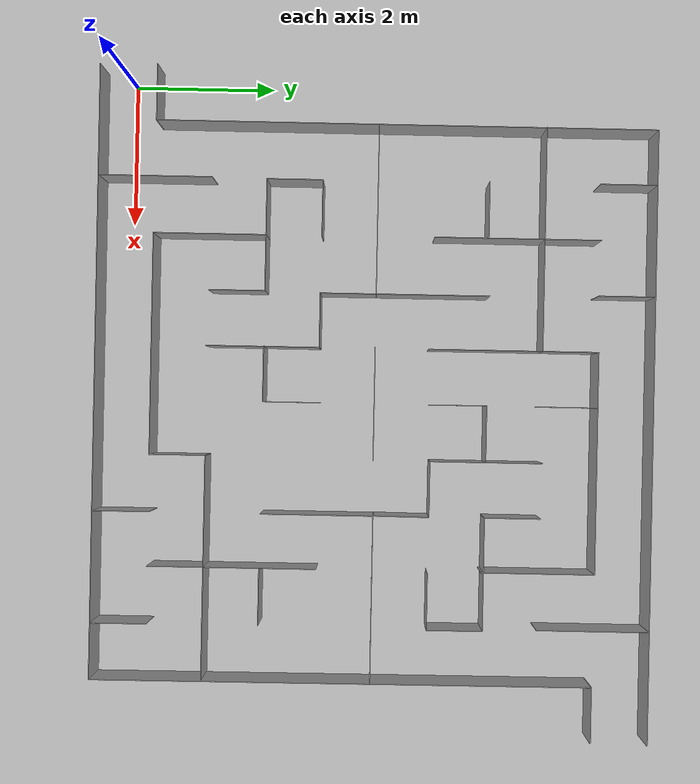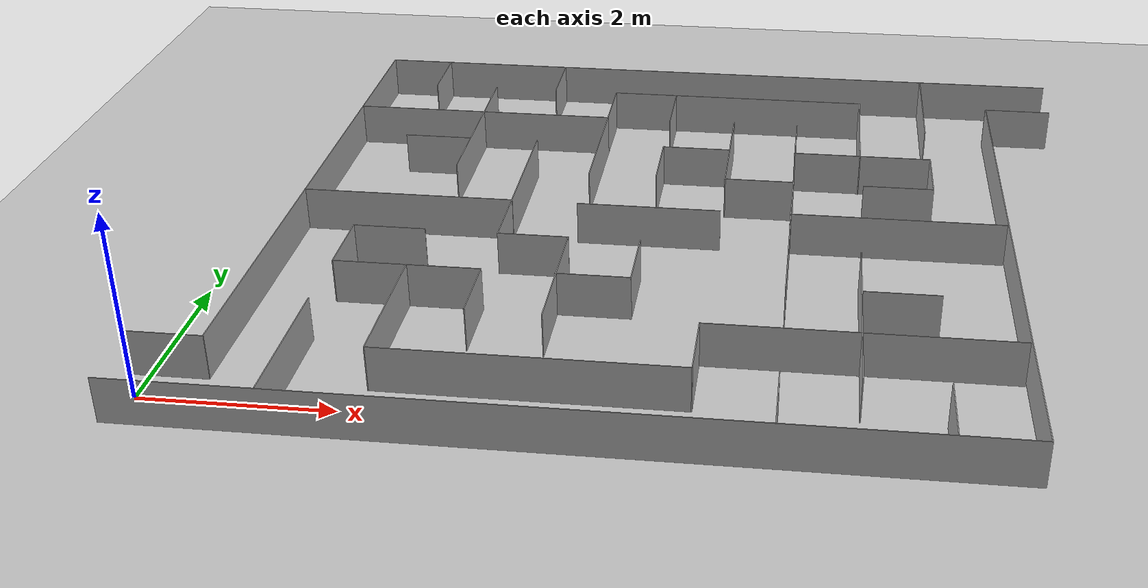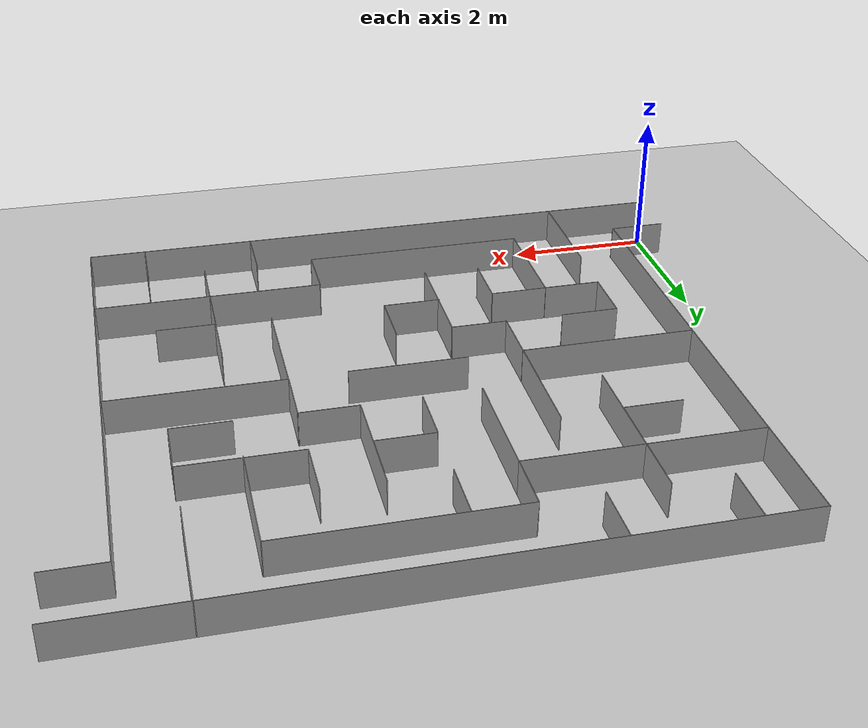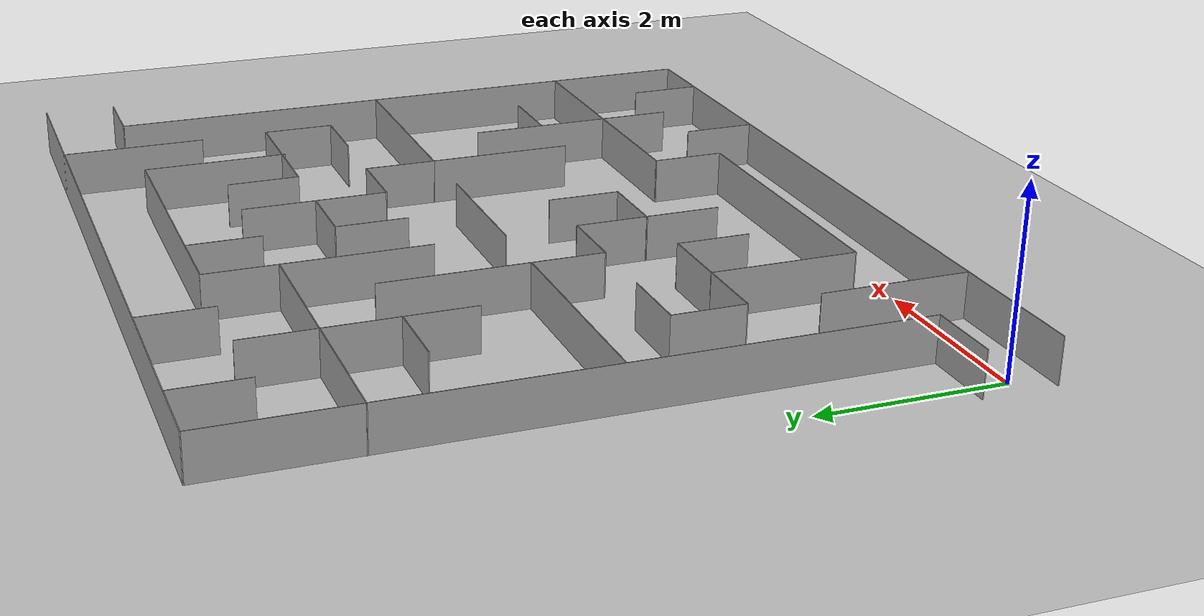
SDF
<sdf version="1.7">
 <world name="default">
  <light name="sun" type="directional">
   <pose>0 0 10 0 -0 0</pose>
   <diffuse>0.8 0.8 0.8 1</diffuse>
   <specular>0.2 0.2 0.2 1</specular>
   <attenuation>
    <range>1000</range>
    <constant>0.9</constant>
    <linear>0.01</linear>
    <quadratic>0.001</quadratic>
   </attenuation>
   <direction>-0.5 0.1 -0.9</direction>
   <spot><inner_angle>0</inner_angle><outer_angle>0</outer_angle><falloff>0</falloff></spot>
  </light>
  <model name="ground_plane">
   <static>1</static>
   <link name="link">
    <collision name="collision">
     <geometry><plane><normal>0 0 1</normal><size>100 100</size></plane></geometry>
     <surface>
      <contact><collide_bitmask>65535</collide_bitmask></contact>
      <friction><ode><mu>100</mu><mu2>50</mu2></ode></friction>
     </surface>
    </collision>
    <visual name="visual">
     <cast_shadows>0</cast_shadows>
     <geometry><plane><normal>0 0 1</normal><size>100 100</size></plane></geometry>
     <material>
      <script><uri>file://media/materials/scripts/gazebo.material</uri><name>Gazebo/Grey</name></script>
     </material>
    </visual>
   </link>
  </model>
  <gravity>0 0 -9.8</gravity>
  <magnetic_field>6e-06 2.3e-05 -4.2e-05</magnetic_field>
  <atmosphere type="adiabatic"/>
  <physics type="ode">
   <max_step_size>0.001</max_step_size>
   <real_time_factor>1</real_time_factor>
   <real_time_update_rate>1000</real_time_update_rate>
  </physics>
  <scene><ambient>0.4 0.4 0.4 1</ambient><background>0.7 0.7 0.7 1</background><shadows>1</shadows></scene>
  <spherical_coordinates>
   <surface_model>EARTH_WGS84</surface_model>
   <latitude_deg>0</latitude_deg>
   <longitude_deg>0</longitude_deg>
   <elevation>0</elevation>
   <heading_deg>0</heading_deg>
  </spherical_coordinates>
  <model name="test_model">
   <pose>4.55115 3.53207 0 0 -0 0</pose>
   <link name="Wall_101">
    <collision name="Wall_101_Collision">
     <geometry><box><size>2.35967 0.01 0.5</size></box></geometry>
     <pose>0 0 0.25 0 -0 0</pose>
    </collision>
    <visual name="Wall_101_Visual">
     <pose>0 0 0.25 0 -0 0</pose>
     <geometry><box><size>2.35967 0.01 0.5</size></box></geometry>
     <material>
      <script><uri>file://media/materials/scripts/gazebo.material</uri><name>Gazebo/Grey</name></script>
      <ambient>1 1 1 1</ambient>
     </material>
     <meta><layer>0</layer></meta>
    </visual>
    <pose>-2.3745 1.99465 0 0 -0 -1.5708</pose>
   </link>
   <link name="Wall_103">
    <collision name="Wall_103_Collision">
     <geometry><box><size>0.8 0.01 0.5</size></box></geometry>
     <pose>0 0 0.25 0 -0 0</pose>
    </collision>
    <visual name="Wall_103_Visual">
     <pose>0 0 0.25 0 -0 0</pose>
     <geometry><box><size>0.8 0.01 0.5</size></box></geometry>
     <material>
      <script><uri>file://media/materials/scripts/gazebo.material</uri><name>Gazebo/Grey</name></script>
      <ambient>1 1 1 1</ambient>
     </material>
     <meta><layer>0</layer></meta>
    </visual>
    <pose>-2.77336 1.57973 0 0 -0 3.14159</pose>
   </link>
   <link name="Wall_105">
    <collision name="Wall_105_Collision">
     <geometry><box><size>0.8 0.01 0.5</size></box></geometry>
     <pose>0 0 0.25 0 -0 0</pose>
    </collision>
    <visual name="Wall_105_Visual">
     <pose>0 0 0.25 0 -0 0</pose>
     <geometry><box><size>0.8 0.01 0.5</size></box></geometry>
     <material>
      <script><uri>file://media/materials/scripts/gazebo.material</uri><name>Gazebo/Grey</name></script>
      <ambient>1 1 1 1</ambient>
     </material>
     <meta><layer>0</layer></meta>
    </visual>
    <pose>-0.7915 2.76665 0 0 -0 1.5708</pose>
   </link>
   <link name="Wall_107">
    <collision name="Wall_107_Collision">
     <geometry><box><size>3.15 0.01 0.5</size></box></geometry>
     <pose>0 0 0.25 0 -0 0</pose>
    </collision>
    <visual name="Wall_107_Visual">
     <pose>0 0 0.25 0 -0 0</pose>
     <geometry><box><size>3.15 0.01 0.5</size></box></geometry>
     <material>
      <script><uri>file://media/materials/scripts/gazebo.material</uri><name>Gazebo/Grey</name></script>
      <ambient>1 1 1 1</ambient>
     </material>
     <meta><layer>0</layer></meta>
    </visual>
    <pose>0.7785 3.16165 0 0 -0 0</pose>
   </link>
   <link name="Wall_109">
    <collision name="Wall_109_Collision">
     <geometry><box><size>1.61 0.01 0.5</size></box></geometry>
     <pose>0 0 0.25 0 -0 0</pose>
    </collision>
    <visual name="Wall_109_Visual">
     <pose>0 0 0.25 0 -0 0</pose>
     <geometry><box><size>1.61 0.01 0.5</size></box></geometry>
     <material>
      <script><uri>file://media/materials/scripts/gazebo.material</uri><name>Gazebo/Grey</name></script>
      <ambient>1 1 1 1</ambient>
     </material>
     <meta><layer>0</layer></meta>
    </visual>
    <pose>2.3485 2.36165 0 0 -0 -1.5708</pose>
   </link>
   <link name="Wall_11">
    <collision name="Wall_11_Collision">
     <geometry><box><size>0.8 0.01 0.5</size></box></geometry>
     <pose>0 0 0.25 0 -0 0</pose>
    </collision>
    <visual name="Wall_11_Visual">
     <pose>0 0 0.25 0 -0 0</pose>
     <geometry><box><size>0.8 0.01 0.5</size></box></geometry>
     <material>
      <script><uri>file://media/materials/scripts/gazebo.material</uri><name>Gazebo/Grey</name></script>
      <ambient>1 1 1 1</ambient>
     </material>
     <meta><layer>0</layer></meta>
    </visual>
    <pose>-4.3495 -3.14135 0 0 -0 3.14159</pose>
   </link>
   <link name="Wall_111">
    <collision name="Wall_111_Collision">
     <geometry><box><size>1.60995 0.01 0.5</size></box></geometry>
     <pose>0 0 0.25 0 -0 0</pose>
    </collision>
    <visual name="Wall_111_Visual">
     <pose>0 0 0.25 0 -0 0</pose>
     <geometry><box><size>1.60995 0.01 0.5</size></box></geometry>
     <material>
      <script><uri>file://media/materials/scripts/gazebo.material</uri><name>Gazebo/Grey</name></script>
      <ambient>1 1 1 1</ambient>
     </material>
     <meta><layer>0</layer></meta>
    </visual>
    <pose>2.3745 1.59265 0 0 -0 0</pose>
   </link>
   <link name="Wall_113">
    <collision name="Wall_113_Collision">
     <geometry><box><size>0.8 0.01 0.5</size></box></geometry>
     <pose>0 0 0.25 0 -0 0</pose>
    </collision>
    <visual name="Wall_113_Visual">
     <pose>0 0 0.25 0 -0 0</pose>
     <geometry><box><size>0.8 0.01 0.5</size></box></geometry>
     <material>
      <script><uri>file://media/materials/scripts/gazebo.material</uri><name>Gazebo/Grey</name></script>
      <ambient>1 1 1 1</ambient>
     </material>
     <meta><layer>0</layer></meta>
    </visual>
    <pose>1.5745 1.98765 0 0 -0 1.5708</pose>
   </link>
   <link name="Wall_115">
    <collision name="Wall_115_Collision">
     <geometry><box><size>0.8 0.01 0.5</size></box></geometry>
     <pose>0 0 0.25 0 -0 0</pose>
    </collision>
    <visual name="Wall_115_Visual">
     <pose>0 0 0.25 0 -0 0</pose>
     <geometry><box><size>0.8 0.01 0.5</size></box></geometry>
     <material>
      <script><uri>file://media/materials/scripts/gazebo.material</uri><name>Gazebo/Grey</name></script>
      <ambient>1 1 1 1</ambient>
     </material>
     <meta><layer>0</layer></meta>
    </visual>
    <pose>3.1745 1.19765 0 0 -0 -1.5708</pose>
   </link>
   <link name="Wall_117">
    <collision name="Wall_117_Collision">
     <geometry><box><size>0.8 0.01 0.5</size></box></geometry>
     <pose>0 0 0.25 0 -0 0</pose>
    </collision>
    <visual name="Wall_117_Visual">
     <pose>0 0 0.25 0 -0 0</pose>
     <geometry><box><size>0.8 0.01 0.5</size></box></geometry>
     <material>
      <script><uri>file://media/materials/scripts/gazebo.material</uri><name>Gazebo/Grey</name></script>
      <ambient>1 1 1 1</ambient>
     </material>
     <meta><layer>0</layer></meta>
    </visual>
    <pose>2.7795 0.80265 0 0 -0 3.14159</pose>
   </link>
   <link name="Wall_119">
    <collision name="Wall_119_Collision">
     <geometry><box><size>0.8 0.01 0.5</size></box></geometry>
     <pose>0 0 0.25 0 -0 0</pose>
    </collision>
    <visual name="Wall_119_Visual">
     <pose>0 0 0.25 0 -0 0</pose>
     <geometry><box><size>0.8 0.01 0.5</size></box></geometry>
     <material>
      <script><uri>file://media/materials/scripts/gazebo.material</uri><name>Gazebo/Grey</name></script>
      <ambient>1 1 1 1</ambient>
     </material>
     <meta><layer>0</layer></meta>
    </visual>
    <pose>-0.006272 2.75727 0 0 -0 -1.5708</pose>
   </link>
   <link name="Wall_121">
    <collision name="Wall_121_Collision">
     <geometry><box><size>0.8 0.01 0.5</size></box></geometry>
     <pose>0 0 0.25 0 -0 0</pose>
    </collision>
    <visual name="Wall_121_Visual">
     <pose>0 0 0.25 0 -0 0</pose>
     <geometry><box><size>0.8 0.01 0.5</size></box></geometry>
     <material>
      <script><uri>file://media/materials/scripts/gazebo.material</uri><name>Gazebo/Grey</name></script>
      <ambient>1 1 1 1</ambient>
     </material>
     <meta><layer>0</layer></meta>
    </visual>
    <pose>-3.16629 3.54766 0 0 -0 -1.5708</pose>
   </link>
   <link name="Wall_123">
    <collision name="Wall_123_Collision">
     <geometry><box><size>0.8 0.01 0.5</size></box></geometry>
     <pose>0 0 0.25 0 -0 0</pose>
    </collision>
    <visual name="Wall_123_Visual">
     <pose>0 0 0.25 0 -0 0</pose>
     <geometry><box><size>0.8 0.01 0.5</size></box></geometry>
     <material>
      <script><uri>file://media/materials/scripts/gazebo.material</uri><name>Gazebo/Grey</name></script>
      <ambient>1 1 1 1</ambient>
     </material>
     <meta><layer>0</layer></meta>
    </visual>
    <pose>-1.58797 3.54766 0 0 -0 -1.5708</pose>
   </link>
   <link name="Wall_125">
    <collision name="Wall_125_Collision">
     <geometry><box><size>1.6 0.01 0.5</size></box></geometry>
     <pose>0 0 0.25 0 -0 0</pose>
    </collision>
    <visual name="Wall_125_Visual">
     <pose>0 0 0.25 0 -0 0</pose>
     <geometry><box><size>1.6 0.01 0.5</size></box></geometry>
     <material>
      <script><uri>file://media/materials/scripts/gazebo.material</uri><name>Gazebo/Grey</name></script>
      <ambient>1 1 1 1</ambient>
     </material>
     <meta><layer>0</layer></meta>
    </visual>
    <pose>3.147 3.15435 0 0 -0 -1.5708</pose>
   </link>
   <link name="Wall_13">
    <collision name="Wall_13_Collision">
     <geometry><box><size>8.7 0.01 0.5</size></box></geometry>
     <pose>0 0 0.25 0 -0 0</pose>
    </collision>
    <visual name="Wall_13_Visual">
     <pose>0 0 0.25 0 -0 0</pose>
     <geometry><box><size>8.7 0.01 0.5</size></box></geometry>
     <material>
      <script><uri>file://media/materials/scripts/gazebo.material</uri><name>Gazebo/Grey</name></script>
      <ambient>1 1 1 1</ambient>
     </material>
     <meta><layer>0</layer></meta>
    </visual>
    <pose>-0.3845 -3.94935 0 0 -0 0</pose>
   </link>
   <link name="Wall_15">
    <collision name="Wall_15_Collision">
     <geometry><box><size>7.10584 0.01 0.5</size></box></geometry>
     <pose>0 0 0.25 0 -0 0</pose>
    </collision>
    <visual name="Wall_15_Visual">
     <pose>0 0 0.25 0 -0 0</pose>
     <geometry><box><size>7.10584 0.01 0.5</size></box></geometry>
     <material>
      <script><uri>file://media/materials/scripts/gazebo.material</uri><name>Gazebo/Grey</name></script>
      <ambient>1 1 1 1</ambient>
     </material>
     <meta><layer>0</layer></meta>
    </visual>
    <pose>3.9505 -0.40135 0 0 -0 -1.56798</pose>
   </link>
   <link name="Wall_17">
    <collision name="Wall_17_Collision">
     <geometry><box><size>0.8 0.01 0.5</size></box></geometry>
     <pose>0 0 0.25 0 -0 0</pose>
    </collision>
    <visual name="Wall_17_Visual">
     <pose>0 0 0.25 0 -0 0</pose>
     <geometry><box><size>0.8 0.01 0.5</size></box></geometry>
     <material>
      <script><uri>file://media/materials/scripts/gazebo.material</uri><name>Gazebo/Grey</name></script>
      <ambient>1 1 1 1</ambient>
     </material>
     <meta><layer>0</layer></meta>
    </visual>
    <pose>4.3355 3.14665 0 0 -0 0</pose>
   </link>
   <link name="Wall_25">
    <collision name="Wall_25_Collision">
     <geometry><box><size>1.6 0.01 0.5</size></box></geometry>
     <pose>0 0 0.25 0 -0 0</pose>
    </collision>
    <visual name="Wall_25_Visual">
     <pose>0 0 0.25 0 -0 0</pose>
     <geometry><box><size>1.6 0.01 0.5</size></box></geometry>
     <material>
      <script><uri>file://media/materials/scripts/gazebo.material</uri><name>Gazebo/Grey</name></script>
      <ambient>1 1 1 1</ambient>
     </material>
     <meta><layer>0</layer></meta>
    </visual>
    <pose>-3.16511 -3.13621 0 0 -0 1.5708</pose>
   </link>
   <link name="Wall_27">
    <collision name="Wall_27_Collision">
     <geometry><box><size>0.8 0.01 0.5</size></box></geometry>
     <pose>0 0 0.25 0 -0 0</pose>
    </collision>
    <visual name="Wall_27_Visual">
     <pose>0 0 0.25 0 -0 0</pose>
     <geometry><box><size>0.8 0.01 0.5</size></box></geometry>
     <material>
      <script><uri>file://media/materials/scripts/gazebo.material</uri><name>Gazebo/Grey</name></script>
      <ambient>1 1 1 1</ambient>
     </material>
     <meta><layer>0</layer></meta>
    </visual>
    <pose>1.57628 -3.53392 0 0 -0 1.5708</pose>
   </link>
   <link name="Wall_29">
    <collision name="Wall_29_Collision">
     <geometry><box><size>0.8 0.01 0.5</size></box></geometry>
     <pose>0 0 0.25 0 -0 0</pose>
    </collision>
    <visual name="Wall_29_Visual">
     <pose>0 0 0.25 0 -0 0</pose>
     <geometry><box><size>0.8 0.01 0.5</size></box></geometry>
     <material>
      <script><uri>file://media/materials/scripts/gazebo.material</uri><name>Gazebo/Grey</name></script>
      <ambient>1 1 1 1</ambient>
     </material>
     <meta><layer>0</layer></meta>
    </visual>
    <pose>3.16073 -3.54549 0 0 -0 1.5708</pose>
   </link>
   <link name="Wall_40">
    <collision name="Wall_40_Collision">
     <geometry><box><size>3.18 0.01 0.5</size></box></geometry>
     <pose>0 0 0.25 0 -0 0</pose>
    </collision>
    <visual name="Wall_40_Visual">
     <pose>0 0 0.25 0 -0 0</pose>
     <geometry><box><size>3.18 0.01 0.5</size></box></geometry>
     <material>
      <script><uri>file://media/materials/scripts/gazebo.material</uri><name>Gazebo/Grey</name></script>
      <ambient>1 1 1 1</ambient>
     </material>
     <meta><layer>0</layer></meta>
    </visual>
    <pose>2.35133 -2.36641 0 0 -0 3.14159</pose>
   </link>
   <link name="Wall_42">
    <collision name="Wall_42_Collision">
     <geometry><box><size>0.8 0.01 0.5</size></box></geometry>
     <pose>0 0 0.25 0 -0 0</pose>
    </collision>
    <visual name="Wall_42_Visual">
     <pose>0 0 0.25 0 -0 0</pose>
     <geometry><box><size>0.8 0.01 0.5</size></box></geometry>
     <material>
      <script><uri>file://media/materials/scripts/gazebo.material</uri><name>Gazebo/Grey</name></script>
      <ambient>1 1 1 1</ambient>
     </material>
     <meta><layer>0</layer></meta>
    </visual>
    <pose>0.766417 -2.76138 0 0 -0 -1.57059</pose>
   </link>
   <link name="Wall_44">
    <collision name="Wall_44_Collision">
     <geometry><box><size>3.14 0.01 0.5</size></box></geometry>
     <pose>0 0 0.25 0 -0 0</pose>
    </collision>
    <visual name="Wall_44_Visual">
     <pose>0 0 0.25 0 -0 0</pose>
     <geometry><box><size>3.14 0.01 0.5</size></box></geometry>
     <material>
      <script><uri>file://media/materials/scripts/gazebo.material</uri><name>Gazebo/Grey</name></script>
      <ambient>1 1 1 1</ambient>
     </material>
     <meta><layer>0</layer></meta>
    </visual>
    <pose>-0.7985 -3.15635 0 0 -0 3.14159</pose>
   </link>
   <link name="Wall_46">
    <collision name="Wall_46_Collision">
     <geometry><box><size>1.6 0.01 0.5</size></box></geometry>
     <pose>0 0 0.25 0 -0 0</pose>
    </collision>
    <visual name="Wall_46_Visual">
     <pose>0 0 0.25 0 -0 0</pose>
     <geometry><box><size>1.6 0.01 0.5</size></box></geometry>
     <material>
      <script><uri>file://media/materials/scripts/gazebo.material</uri><name>Gazebo/Grey</name></script>
      <ambient>1 1 1 1</ambient>
     </material>
     <meta><layer>0</layer></meta>
    </visual>
    <pose>-2.3635 -2.36135 0 0 -0 1.5708</pose>
   </link>
   <link name="Wall_48">
    <collision name="Wall_48_Collision">
     <geometry><box><size>0.8 0.01 0.5</size></box></geometry>
     <pose>0 0 0.25 0 -0 0</pose>
    </collision>
    <visual name="Wall_48_Visual">
     <pose>0 0 0.25 0 -0 0</pose>
     <geometry><box><size>0.8 0.01 0.5</size></box></geometry>
     <material>
      <script><uri>file://media/materials/scripts/gazebo.material</uri><name>Gazebo/Grey</name></script>
      <ambient>1 1 1 1</ambient>
     </material>
     <meta><layer>0</layer></meta>
    </visual>
    <pose>2.34536 -2.76129 0 0 -0 -1.5708</pose>
   </link>
   <link name="Wall_5">
    <collision name="Wall_5_Collision">
     <geometry><box><size>8.7 0.01 0.5</size></box></geometry>
     <pose>0 0 0.25 0 -0 0</pose>
    </collision>
    <visual name="Wall_5_Visual">
     <pose>0 0 0.25 0 -0 0</pose>
     <geometry><box><size>8.7 0.01 0.5</size></box></geometry>
     <material>
      <script><uri>file://media/materials/scripts/gazebo.material</uri><name>Gazebo/Grey</name></script>
      <ambient>1 1 1 1</ambient>
     </material>
     <meta><layer>0</layer></meta>
    </visual>
    <pose>0.3995 3.94865 0 0 -0 0</pose>
   </link>
   <link name="Wall_50">
    <collision name="Wall_50_Collision">
     <geometry><box><size>0.8 0.01 0.5</size></box></geometry>
     <pose>0 0 0.25 0 -0 0</pose>
    </collision>
    <visual name="Wall_50_Visual">
     <pose>0 0 0.25 0 -0 0</pose>
     <geometry><box><size>0.8 0.01 0.5</size></box></geometry>
     <material>
      <script><uri>file://media/materials/scripts/gazebo.material</uri><name>Gazebo/Grey</name></script>
      <ambient>1 1 1 1</ambient>
     </material>
     <meta><layer>0</layer></meta>
    </visual>
    <pose>-1.9685 -1.56635 0 0 -0 0</pose>
   </link>
   <link name="Wall_52">
    <collision name="Wall_52_Collision">
     <geometry><box><size>0.8 0.01 0.5</size></box></geometry>
     <pose>0 0 0.25 0 -0 0</pose>
    </collision>
    <visual name="Wall_52_Visual">
     <pose>0 0 0.25 0 -0 0</pose>
     <geometry><box><size>0.8 0.01 0.5</size></box></geometry>
     <material>
      <script><uri>file://media/materials/scripts/gazebo.material</uri><name>Gazebo/Grey</name></script>
      <ambient>1 1 1 1</ambient>
     </material>
     <meta><layer>0</layer></meta>
    </visual>
    <pose>-1.5735 -1.96135 0 0 -0 -1.5708</pose>
   </link>
   <link name="Wall_54">
    <collision name="Wall_54_Collision">
     <geometry><box><size>0.8 0.01 0.5</size></box></geometry>
     <pose>0 0 0.25 0 -0 0</pose>
    </collision>
    <visual name="Wall_54_Visual">
     <pose>0 0 0.25 0 -0 0</pose>
     <geometry><box><size>0.8 0.01 0.5</size></box></geometry>
     <material>
      <script><uri>file://media/materials/scripts/gazebo.material</uri><name>Gazebo/Grey</name></script>
      <ambient>1 1 1 1</ambient>
     </material>
     <meta><layer>0</layer></meta>
    </visual>
    <pose>-2.7585 -1.56635 0 0 -0 3.14159</pose>
   </link>
   <link name="Wall_56">
    <collision name="Wall_56_Collision">
     <geometry><box><size>0.8 0.01 0.5</size></box></geometry>
     <pose>0 0 0.25 0 -0 0</pose>
    </collision>
    <visual name="Wall_56_Visual">
     <pose>0 0 0.25 0 -0 0</pose>
     <geometry><box><size>0.8 0.01 0.5</size></box></geometry>
     <material>
      <script><uri>file://media/materials/scripts/gazebo.material</uri><name>Gazebo/Grey</name></script>
      <ambient>1 1 1 1</ambient>
     </material>
     <meta><layer>0</layer></meta>
    </visual>
    <pose>-3.1535 -1.17135 0 0 -0 1.5708</pose>
   </link>
   <link name="Wall_58">
    <collision name="Wall_58_Collision">
     <geometry><box><size>0.8 0.01 0.5</size></box></geometry>
     <pose>0 0 0.25 0 -0 0</pose>
    </collision>
    <visual name="Wall_58_Visual">
     <pose>0 0 0.25 0 -0 0</pose>
     <geometry><box><size>0.8 0.01 0.5</size></box></geometry>
     <material>
      <script><uri>file://media/materials/scripts/gazebo.material</uri><name>Gazebo/Grey</name></script>
      <ambient>1 1 1 1</ambient>
     </material>
     <meta><layer>0</layer></meta>
    </visual>
    <pose>-2.7585 -0.77635 0 0 -0 0</pose>
   </link>
   <link name="Wall_60">
    <collision name="Wall_60_Collision">
     <geometry><box><size>1.6 0.01 0.5</size></box></geometry>
     <pose>0 0 0.25 0 -0 0</pose>
    </collision>
    <visual name="Wall_60_Visual">
     <pose>0 0 0.25 0 -0 0</pose>
     <geometry><box><size>1.6 0.01 0.5</size></box></geometry>
     <material>
      <script><uri>file://media/materials/scripts/gazebo.material</uri><name>Gazebo/Grey</name></script>
      <ambient>1 1 1 1</ambient>
     </material>
     <meta><layer>0</layer></meta>
    </visual>
    <pose>2.34536 -1.57129 0 0 -0 1.5708</pose>
   </link>
   <link name="Wall_62">
    <collision name="Wall_62_Collision">
     <geometry><box><size>0.8 0.01 0.5</size></box></geometry>
     <pose>0 0 0.25 0 -0 0</pose>
    </collision>
    <visual name="Wall_62_Visual">
     <pose>0 0 0.25 0 -0 0</pose>
     <geometry><box><size>0.8 0.01 0.5</size></box></geometry>
     <material>
      <script><uri>file://media/materials/scripts/gazebo.material</uri><name>Gazebo/Grey</name></script>
      <ambient>1 1 1 1</ambient>
     </material>
     <meta><layer>0</layer></meta>
    </visual>
    <pose>2.75652 -1.57715 0 0 -0 0</pose>
   </link>
   <link name="Wall_64">
    <collision name="Wall_64_Collision">
     <geometry><box><size>2.36765 0.01 0.5</size></box></geometry>
     <pose>0 0 0.25 0 -0 0</pose>
    </collision>
    <visual name="Wall_64_Visual">
     <pose>0 0 0.25 0 -0 0</pose>
     <geometry><box><size>2.36765 0.01 0.5</size></box></geometry>
     <material>
      <script><uri>file://media/materials/scripts/gazebo.material</uri><name>Gazebo/Grey</name></script>
      <ambient>1 1 1 1</ambient>
     </material>
     <meta><layer>0</layer></meta>
    </visual>
    <pose>2.75368 0.01865 0 0 -0 3.14159</pose>
   </link>
   <link name="Wall_66">
    <collision name="Wall_66_Collision">
     <geometry><box><size>1.6 0.01 0.5</size></box></geometry>
     <pose>0 0 0.25 0 -0 0</pose>
    </collision>
    <visual name="Wall_66_Visual">
     <pose>0 0 0.25 0 -0 0</pose>
     <geometry><box><size>1.6 0.01 0.5</size></box></geometry>
     <material>
      <script><uri>file://media/materials/scripts/gazebo.material</uri><name>Gazebo/Grey</name></script>
      <ambient>1 1 1 1</ambient>
     </material>
     <meta><layer>0</layer></meta>
    </visual>
    <pose>1.57868 -0.77635 0 0 -0 -1.5708</pose>
   </link>
   <link name="Wall_68">
    <collision name="Wall_68_Collision">
     <geometry><box><size>0.8 0.01 0.5</size></box></geometry>
     <pose>0 0 0.25 0 -0 0</pose>
    </collision>
    <visual name="Wall_68_Visual">
     <pose>0 0 0.25 0 -0 0</pose>
     <geometry><box><size>0.8 0.01 0.5</size></box></geometry>
     <material>
      <script><uri>file://media/materials/scripts/gazebo.material</uri><name>Gazebo/Grey</name></script>
      <ambient>1 1 1 1</ambient>
     </material>
     <meta><layer>0</layer></meta>
    </visual>
    <pose>1.57868 0.41365 0 0 -0 1.56112</pose>
   </link>
   <link name="Wall_7">
    <collision name="Wall_7_Collision">
     <geometry><box><size>7.1 0.01 0.5</size></box></geometry>
     <pose>0 0 0.25 0 -0 0</pose>
    </collision>
    <visual name="Wall_7_Visual">
     <pose>0 0 0.25 0 -0 0</pose>
     <geometry><box><size>7.1 0.01 0.5</size></box></geometry>
     <material>
      <script><uri>file://media/materials/scripts/gazebo.material</uri><name>Gazebo/Grey</name></script>
      <ambient>1 1 1 1</ambient>
     </material>
     <meta><layer>0</layer></meta>
    </visual>
    <pose>-3.95 0.40365 0 0 -0 -1.57207</pose>
   </link>
   <link name="Wall_70">
    <collision name="Wall_70_Collision">
     <geometry><box><size>0.8 0.01 0.5</size></box></geometry>
     <pose>0 0 0.25 0 -0 0</pose>
    </collision>
    <visual name="Wall_70_Visual">
     <pose>0 0 0.25 0 -0 0</pose>
     <geometry><box><size>0.8 0.01 0.5</size></box></geometry>
     <material>
      <script><uri>file://media/materials/scripts/gazebo.material</uri><name>Gazebo/Grey</name></script>
      <ambient>1 1 1 1</ambient>
     </material>
     <meta><layer>0</layer></meta>
    </visual>
    <pose>1.1875 0.80865 0 0 -0 3.14159</pose>
   </link>
   <link name="Wall_72">
    <collision name="Wall_72_Collision">
     <geometry><box><size>1.6 0.01 0.5</size></box></geometry>
     <pose>0 0 0.25 0 -0 0</pose>
    </collision>
    <visual name="Wall_72_Visual">
     <pose>0 0 0.25 0 -0 0</pose>
     <geometry><box><size>1.6 0.01 0.5</size></box></geometry>
     <material>
      <script><uri>file://media/materials/scripts/gazebo.material</uri><name>Gazebo/Grey</name></script>
      <ambient>1 1 1 1</ambient>
     </material>
     <meta><layer>0</layer></meta>
    </visual>
    <pose>0.7925 1.60365 0 0 -0 1.5708</pose>
   </link>
   <link name="Wall_74">
    <collision name="Wall_74_Collision">
     <geometry><box><size>0.8 0.01 0.5</size></box></geometry>
     <pose>0 0 0.25 0 -0 0</pose>
    </collision>
    <visual name="Wall_74_Visual">
     <pose>0 0 0.25 0 -0 0</pose>
     <geometry><box><size>0.8 0.01 0.5</size></box></geometry>
     <material>
      <script><uri>file://media/materials/scripts/gazebo.material</uri><name>Gazebo/Grey</name></script>
      <ambient>1 1 1 1</ambient>
     </material>
     <meta><layer>0</layer></meta>
    </visual>
    <pose>0.388385 1.59474 0 0 -0 3.14159</pose>
   </link>
   <link name="Wall_76">
    <collision name="Wall_76_Collision">
     <geometry><box><size>0.8 0.01 0.5</size></box></geometry>
     <pose>0 0 0.25 0 -0 0</pose>
    </collision>
    <visual name="Wall_76_Visual">
     <pose>0 0 0.25 0 -0 0</pose>
     <geometry><box><size>0.8 0.01 0.5</size></box></geometry>
     <material>
      <script><uri>file://media/materials/scripts/gazebo.material</uri><name>Gazebo/Grey</name></script>
      <ambient>1 1 1 1</ambient>
     </material>
     <meta><layer>0</layer></meta>
    </visual>
    <pose>-0.006615 1.19974 0 0 -0 -1.5708</pose>
   </link>
   <link name="Wall_78">
    <collision name="Wall_78_Collision">
     <geometry><box><size>1.60995 0.01 0.5</size></box></geometry>
     <pose>0 0 0.25 0 -0 0</pose>
    </collision>
    <visual name="Wall_78_Visual">
     <pose>0 0 0.25 0 -0 0</pose>
     <geometry><box><size>1.60995 0.01 0.5</size></box></geometry>
     <material>
      <script><uri>file://media/materials/scripts/gazebo.material</uri><name>Gazebo/Grey</name></script>
      <ambient>1 1 1 1</ambient>
     </material>
     <meta><layer>0</layer></meta>
    </visual>
    <pose>-0.0065 0.00565 0 0 -0 3.14159</pose>
   </link>
   <link name="Wall_80">
    <collision name="Wall_80_Collision">
     <geometry><box><size>2.4 0.01 0.5</size></box></geometry>
     <pose>0 0 0.25 0 -0 0</pose>
    </collision>
    <visual name="Wall_80_Visual">
     <pose>0 0 0.25 0 -0 0</pose>
     <geometry><box><size>2.4 0.01 0.5</size></box></geometry>
     <material>
      <script><uri>file://media/materials/scripts/gazebo.material</uri><name>Gazebo/Grey</name></script>
      <ambient>1 1 1 1</ambient>
     </material>
     <meta><layer>0</layer></meta>
    </visual>
    <pose>-2.7514 0.005636 0 0 -0 1.2e-05</pose>
   </link>
   <link name="Wall_82">
    <collision name="Wall_82_Collision">
     <geometry><box><size>0.8 0.01 0.5</size></box></geometry>
     <pose>0 0 0.25 0 -0 0</pose>
    </collision>
    <visual name="Wall_82_Visual">
     <pose>0 0 0.25 0 -0 0</pose>
     <geometry><box><size>0.8 0.01 0.5</size></box></geometry>
     <material>
      <script><uri>file://media/materials/scripts/gazebo.material</uri><name>Gazebo/Grey</name></script>
      <ambient>1 1 1 1</ambient>
     </material>
     <meta><layer>0</layer></meta>
    </visual>
    <pose>-1.5564 -0.389364 0 0 -0 -1.57053</pose>
   </link>
   <link name="Wall_84">
    <collision name="Wall_84_Collision">
     <geometry><box><size>0.78 0.01 0.5</size></box></geometry>
     <pose>0 0 0.25 0 -0 0</pose>
    </collision>
    <visual name="Wall_84_Visual">
     <pose>0 0 0.25 0 -0 0</pose>
     <geometry><box><size>0.78 0.01 0.5</size></box></geometry>
     <material>
      <script><uri>file://media/materials/scripts/gazebo.material</uri><name>Gazebo/Grey</name></script>
      <ambient>1 1 1 1</ambient>
     </material>
     <meta><layer>0</layer></meta>
    </visual>
    <pose>-1.1714 -0.784364 0 0 -0 3.7e-05</pose>
   </link>
   <link name="Wall_88">
    <collision name="Wall_88_Collision">
     <geometry><box><size>1.61 0.01 0.5</size></box></geometry>
     <pose>0 0 0.25 0 -0 0</pose>
    </collision>
    <visual name="Wall_88_Visual">
     <pose>0 0 0.25 0 -0 0</pose>
     <geometry><box><size>1.61 0.01 0.5</size></box></geometry>
     <material>
      <script><uri>file://media/materials/scripts/gazebo.material</uri><name>Gazebo/Grey</name></script>
      <ambient>1 1 1 1</ambient>
     </material>
     <meta><layer>0</layer></meta>
    </visual>
    <pose>-0.7865 -1.58435 0 0 -0 -1.5708</pose>
   </link>
   <link name="Wall_90">
    <collision name="Wall_90_Collision">
     <geometry><box><size>0.8 0.01 0.5</size></box></geometry>
     <pose>0 0 0.25 0 -0 0</pose>
    </collision>
    <visual name="Wall_90_Visual">
     <pose>0 0 0.25 0 -0 0</pose>
     <geometry><box><size>0.8 0.01 0.5</size></box></geometry>
     <material>
      <script><uri>file://media/materials/scripts/gazebo.material</uri><name>Gazebo/Grey</name></script>
      <ambient>1 1 1 1</ambient>
     </material>
     <meta><layer>0</layer></meta>
    </visual>
    <pose>-0.401317 -1.56918 0 0 -0 0</pose>
   </link>
   <link name="Wall_92">
    <collision name="Wall_92_Collision">
     <geometry><box><size>0.8 0.01 0.5</size></box></geometry>
     <pose>0 0 0.25 0 -0 0</pose>
    </collision>
    <visual name="Wall_92_Visual">
     <pose>0 0 0.25 0 -0 0</pose>
     <geometry><box><size>0.8 0.01 0.5</size></box></geometry>
     <material>
      <script><uri>file://media/materials/scripts/gazebo.material</uri><name>Gazebo/Grey</name></script>
      <ambient>1 1 1 1</ambient>
     </material>
     <meta><layer>0</layer></meta>
    </visual>
    <pose>-0.006317 -1.17418 0 0 -0 1.5708</pose>
   </link>
   <link name="Wall_94">
    <collision name="Wall_94_Collision">
     <geometry><box><size>1.60997 0.01 0.5</size></box></geometry>
     <pose>0 0 0.25 0 -0 0</pose>
    </collision>
    <visual name="Wall_94_Visual">
     <pose>0 0 0.25 0 -0 0</pose>
     <geometry><box><size>1.60997 0.01 0.5</size></box></geometry>
     <material>
      <script><uri>file://media/materials/scripts/gazebo.material</uri><name>Gazebo/Grey</name></script>
      <ambient>1 1 1 1</ambient>
     </material>
     <meta><layer>0</layer></meta>
    </visual>
    <pose>-1.5565 0.80565 0 0 -0 1.5708</pose>
   </link>
   <link name="Wall_96">
    <collision name="Wall_96_Collision">
     <geometry><box><size>3.17 0.01 0.5</size></box></geometry>
     <pose>0 0 0.25 0 -0 0</pose>
    </collision>
    <visual name="Wall_96_Visual">
     <pose>0 0 0.25 0 -0 0</pose>
     <geometry><box><size>3.17 0.01 0.5</size></box></geometry>
     <material>
      <script><uri>file://media/materials/scripts/gazebo.material</uri><name>Gazebo/Grey</name></script>
      <ambient>1 1 1 1</ambient>
     </material>
     <meta><layer>0</layer></meta>
    </visual>
    <pose>-2.3715 2.37165 0 0 -0 0</pose>
   </link>
   <link name="Wall_98">
    <collision name="Wall_98_Collision">
     <geometry><box><size>1.61 0.01 0.5</size></box></geometry>
     <pose>0 0 0.25 0 -0 0</pose>
    </collision>
    <visual name="Wall_98_Visual">
     <pose>0 0 0.25 0 -0 0</pose>
     <geometry><box><size>1.61 0.01 0.5</size></box></geometry>
     <material>
      <script><uri>file://media/materials/scripts/gazebo.material</uri><name>Gazebo/Grey</name></script>
      <ambient>1 1 1 1</ambient>
     </material>
     <meta><layer>0</layer></meta>
    </visual>
    <pose>-0.7915 1.57165 0 0 -0 -1.5708</pose>
   </link>
   <static>1</static>
  </model>
 </world>
</sdf>
